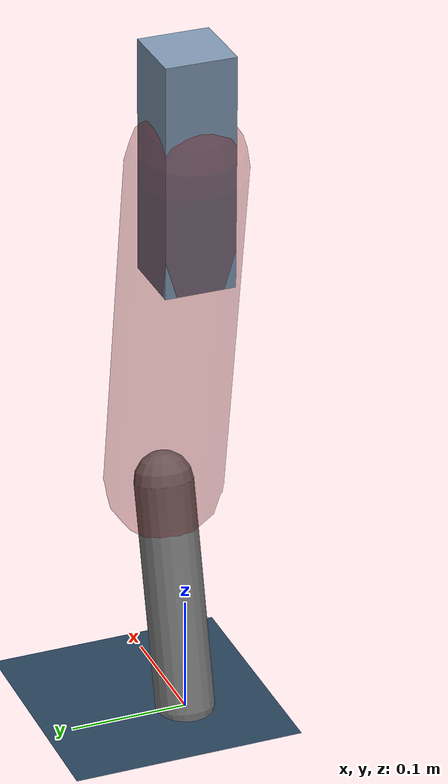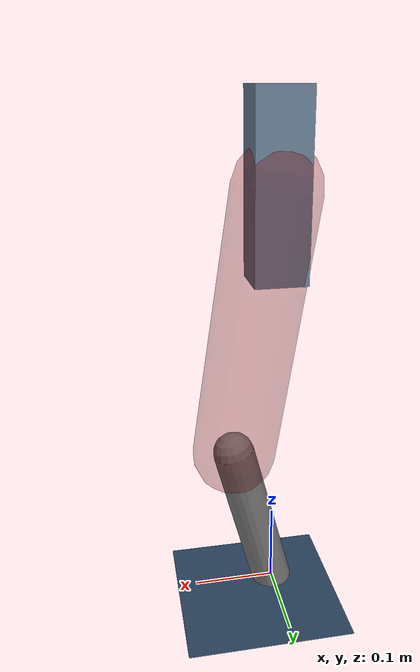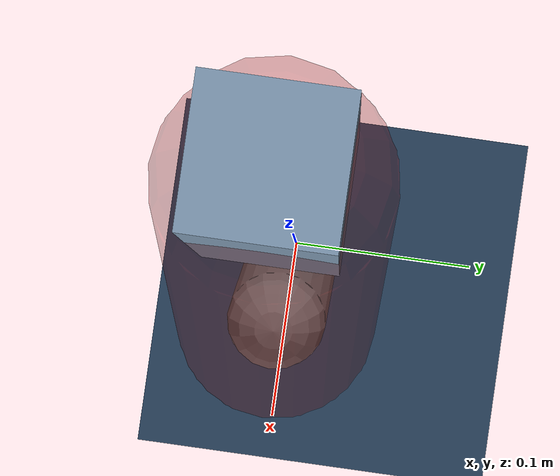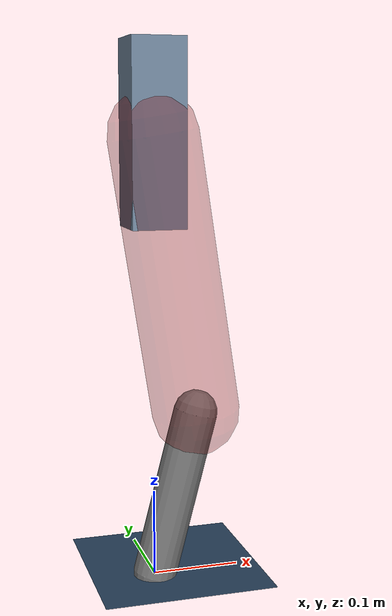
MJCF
<mujoco model="Hopper2D">
	<compiler inertiafromgeom="true" angle="radian" />
	<option timestep="0.001" integrator="implicit" cone="elliptic" solver="Newton" tolerance="1e-10" />

	<default>
		<geom contype="1" conaffinity="1" condim="3" friction="2 0.005 0.0001" solref="0.005 1" />
		<joint limited="true" damping="0.1" />
	</default>

	<asset>
		<texture name="skybox" type="skybox" builtin="gradient" rgb1=".4 .6 .8" rgb2="0 0 0" width="800" height="800" />
		<texture name="grid" type="2d" builtin="checker" rgb1=".1 .2 .3" rgb2=".2 .3 .4" width="300" height="300" mark="edge" markrgb=".2 .3 .4" />
		<material name="ground" texture="grid" texrepeat="1 1" texuniform="true" reflectance="0.1" />
		<material name="leg" rgba="0.5 0.6 0.7 1" />
	</asset>

	<worldbody>

		<geom name="floor" type="plane" size="5 5 0.25" material="ground" />

		<light directional="false" diffuse="0.8 0.8 0.8" specular="0.3 0.3 0.3" pos="0 0 2" dir="0 0 -1" />
		<light mode="targetbodycom" target="base" directional="false" diffuse="0.8 0.8 0.8" specular="0.3 0.3 0.3" pos="0 0 2" dir="0 0 -1" />

		<camera name="fixed" pos="0 -2 1" xyaxes="1 0 0 0 0 1" />
		<camera name="tracking" mode="trackcom" pos="0 -3 1" />

		<body name="root" pos="0 0 0.5022010437488079">
			<joint name="slide_x" type="slide" axis="1 0 0" range="-100 100" />
			<joint name="slide_z" type="slide" axis="0 0 1" range="0 10" />

			<body name="base" pos="0 0 0">
				<geom name="torso" type="box" size="0.03 0.03 0.1" mass="2.648" material="leg" />

				<body name="link1" pos="0 0 0" euler="0 1.4146799344222765 0">
					<joint type="hinge" axis="0 -1 0" pos="0 0 0" name="hinge1" limited="true" range="-3.14 3.14" stiffness="0" damping="0.1" />
					<geom name="thigh" type="capsule" fromto="0 0 0 0.31488531825719684 0 0" size="0.05" rgba="0.5 0 0 0.3" mass="1.0291903592944316" />

					<body name="link2" pos="0.31488531825719684 0 0" euler="0 0.406862486004084 0">
						<joint type="hinge" axis="0 -1 0" pos="0 0 0" name="hinge2" limited="true" range="-3.14 3.14" stiffness="0" damping="0.1" />
						<geom name="shank" type="capsule" fromto="0 0 0 0.19731572549161108 0 0" size="0.025" mass="0.3986525803932888" />

					</body>
				</body>
			</body>
		</body>
	</worldbody>

	<actuator>
		<motor name="torque1" joint="hinge1" ctrlrange="-122.2159602083833 122.2159602083833" ctrllimited="true" gear="1" />
		<motor name="torque2" joint="hinge2" ctrlrange="-80.65995887714115 80.65995887714115" ctrllimited="true" gear="1" />
	</actuator>
</mujoco>
